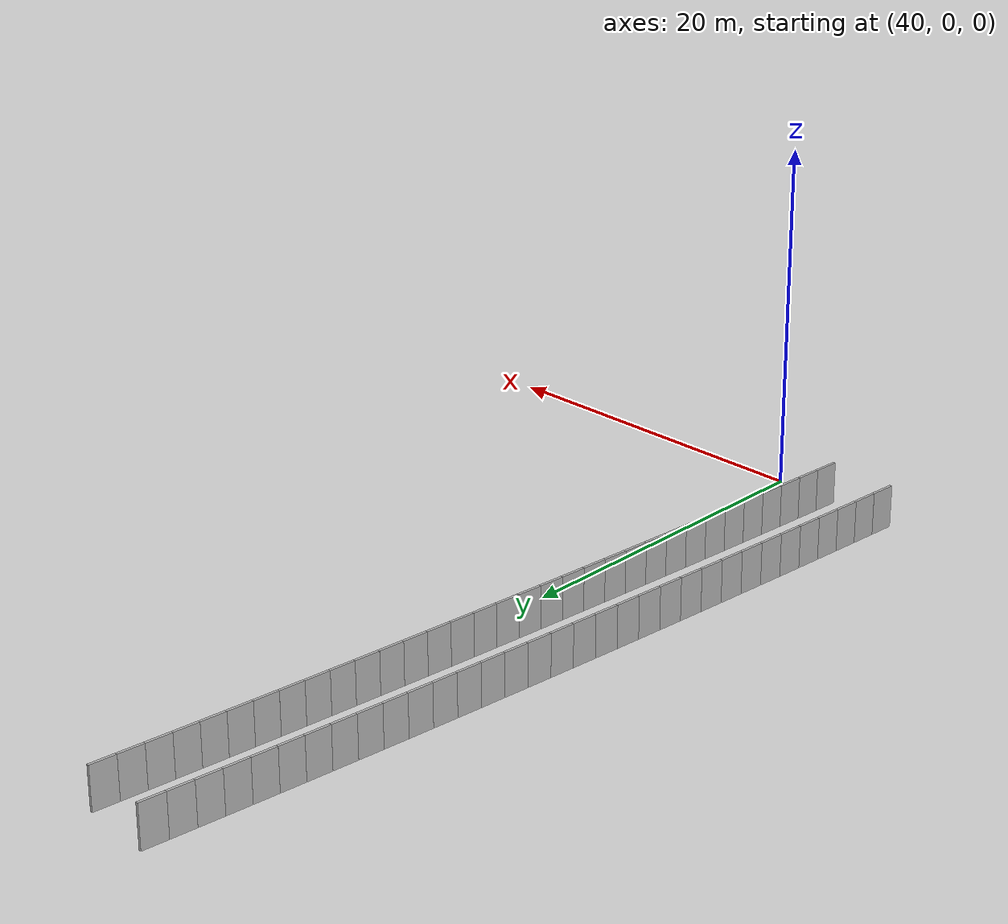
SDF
<?xml version="1.0" ?>
<sdf version="1.6">
  <model name="sps_0227">
    <pose frame="">0 0 0 0 -0 0</pose>
    <static>1</static>
    <self_collide>0</self_collide>
    <allow_auto_disable>0</allow_auto_disable>
    <link name="Wall5137">
      <kinematic>0</kinematic>
      <gravity>1</gravity>
      <self_collide>0</self_collide>
      <collision name="collision">
        <geometry>
          <box>
            <size>1.49644 0.15 2.5</size>
          </box>
        </geometry>
        <pose frame="">0 0 0 0 -0 0</pose>
      </collision>
      <visual name="visual">
        <geometry>
          <box>
            <size>1.49644 0.15 2.5</size>
          </box>
        </geometry>
        <pose frame="">0 0 0 0 -0 0</pose>
        <cast_shadows>1</cast_shadows>
        <transparency>0.0</transparency>
      </visual>
      <pose frame="">40.3633 48.5988 1.25 0 0 -1.68316</pose>
    </link>
    <link name="Wall5138">
      <kinematic>0</kinematic>
      <gravity>1</gravity>
      <self_collide>0</self_collide>
      <collision name="collision">
        <geometry>
          <box>
            <size>1.4966 0.15 2.5</size>
          </box>
        </geometry>
        <pose frame="">0 0 0 0 -0 0</pose>
      </collision>
      <visual name="visual">
        <geometry>
          <box>
            <size>1.4966 0.15 2.5</size>
          </box>
        </geometry>
        <pose frame="">0 0 0 0 -0 0</pose>
        <cast_shadows>1</cast_shadows>
        <transparency>0.0</transparency>
      </visual>
      <pose frame="">40.1967 47.1116 1.25 0 0 -1.68154</pose>
    </link>
    <link name="Wall5139">
      <kinematic>0</kinematic>
      <gravity>1</gravity>
      <self_collide>0</self_collide>
      <collision name="collision">
        <geometry>
          <box>
            <size>1.49672 0.15 2.5</size>
          </box>
        </geometry>
        <pose frame="">0 0 0 0 -0 0</pose>
      </collision>
      <visual name="visual">
        <geometry>
          <box>
            <size>1.49672 0.15 2.5</size>
          </box>
        </geometry>
        <pose frame="">0 0 0 0 -0 0</pose>
        <cast_shadows>1</cast_shadows>
        <transparency>0.0</transparency>
      </visual>
      <pose frame="">40.0324 45.624 1.25 0 0 -1.68006</pose>
    </link>
    <link name="Wall5140">
      <kinematic>0</kinematic>
      <gravity>1</gravity>
      <self_collide>0</self_collide>
      <collision name="collision">
        <geometry>
          <box>
            <size>1.49643 0.15 2.5</size>
          </box>
        </geometry>
        <pose frame="">0 0 0 0 -0 0</pose>
      </collision>
      <visual name="visual">
        <geometry>
          <box>
            <size>1.49643 0.15 2.5</size>
          </box>
        </geometry>
        <pose frame="">0 0 0 0 -0 0</pose>
        <cast_shadows>1</cast_shadows>
        <transparency>0.0</transparency>
      </visual>
      <pose frame="">39.8705 44.1362 1.25 0 0 -1.67831</pose>
    </link>
    <link name="Wall5141">
      <kinematic>0</kinematic>
      <gravity>1</gravity>
      <self_collide>0</self_collide>
      <collision name="collision">
        <geometry>
          <box>
            <size>1.49636 0.15 2.5</size>
          </box>
        </geometry>
        <pose frame="">0 0 0 0 -0 0</pose>
      </collision>
      <visual name="visual">
        <geometry>
          <box>
            <size>1.49636 0.15 2.5</size>
          </box>
        </geometry>
        <pose frame="">0 0 0 0 -0 0</pose>
        <cast_shadows>1</cast_shadows>
        <transparency>0.0</transparency>
      </visual>
      <pose frame="">39.7111 42.6483 1.25 0 0 -1.67672</pose>
    </link>
    <link name="Wall5142">
      <kinematic>0</kinematic>
      <gravity>1</gravity>
      <self_collide>0</self_collide>
      <collision name="collision">
        <geometry>
          <box>
            <size>1.49656 0.15 2.5</size>
          </box>
        </geometry>
        <pose frame="">0 0 0 0 -0 0</pose>
      </collision>
      <visual name="visual">
        <geometry>
          <box>
            <size>1.49656 0.15 2.5</size>
          </box>
        </geometry>
        <pose frame="">0 0 0 0 -0 0</pose>
        <cast_shadows>1</cast_shadows>
        <transparency>0.0</transparency>
      </visual>
      <pose frame="">39.554 41.1601 1.25 0 0 -1.67523</pose>
    </link>
    <link name="Wall5143">
      <kinematic>0</kinematic>
      <gravity>1</gravity>
      <self_collide>0</self_collide>
      <collision name="collision">
        <geometry>
          <box>
            <size>1.49647 0.15 2.5</size>
          </box>
        </geometry>
        <pose frame="">0 0 0 0 -0 0</pose>
      </collision>
      <visual name="visual">
        <geometry>
          <box>
            <size>1.49647 0.15 2.5</size>
          </box>
        </geometry>
        <pose frame="">0 0 0 0 -0 0</pose>
        <cast_shadows>1</cast_shadows>
        <transparency>0.0</transparency>
      </visual>
      <pose frame="">39.3993 39.6716 1.25 0 0 -1.67347</pose>
    </link>
    <link name="Wall5144">
      <kinematic>0</kinematic>
      <gravity>1</gravity>
      <self_collide>0</self_collide>
      <collision name="collision">
        <geometry>
          <box>
            <size>1.49651 0.15 2.5</size>
          </box>
        </geometry>
        <pose frame="">0 0 0 0 -0 0</pose>
      </collision>
      <visual name="visual">
        <geometry>
          <box>
            <size>1.49651 0.15 2.5</size>
          </box>
        </geometry>
        <pose frame="">0 0 0 0 -0 0</pose>
        <cast_shadows>1</cast_shadows>
        <transparency>0.0</transparency>
      </visual>
      <pose frame="">39.2469 38.1829 1.25 0 0 -1.67216</pose>
    </link>
    <link name="Wall5145">
      <kinematic>0</kinematic>
      <gravity>1</gravity>
      <self_collide>0</self_collide>
      <collision name="collision">
        <geometry>
          <box>
            <size>1.49661 0.15 2.5</size>
          </box>
        </geometry>
        <pose frame="">0 0 0 0 -0 0</pose>
      </collision>
      <visual name="visual">
        <geometry>
          <box>
            <size>1.49661 0.15 2.5</size>
          </box>
        </geometry>
        <pose frame="">0 0 0 0 -0 0</pose>
        <cast_shadows>1</cast_shadows>
        <transparency>0.0</transparency>
      </visual>
      <pose frame="">39.0969 36.6939 1.25 0 0 -1.67035</pose>
    </link>
    <link name="Wall5146">
      <kinematic>0</kinematic>
      <gravity>1</gravity>
      <self_collide>0</self_collide>
      <collision name="collision">
        <geometry>
          <box>
            <size>1.4964 0.15 2.5</size>
          </box>
        </geometry>
        <pose frame="">0 0 0 0 -0 0</pose>
      </collision>
      <visual name="visual">
        <geometry>
          <box>
            <size>1.4964 0.15 2.5</size>
          </box>
        </geometry>
        <pose frame="">0 0 0 0 -0 0</pose>
        <cast_shadows>1</cast_shadows>
        <transparency>0.0</transparency>
      </visual>
      <pose frame="">38.9492 35.2047 1.25 0 0 -1.66893</pose>
    </link>
    <link name="Wall5147">
      <kinematic>0</kinematic>
      <gravity>1</gravity>
      <self_collide>0</self_collide>
      <collision name="collision">
        <geometry>
          <box>
            <size>1.49657 0.15 2.5</size>
          </box>
        </geometry>
        <pose frame="">0 0 0 0 -0 0</pose>
      </collision>
      <visual name="visual">
        <geometry>
          <box>
            <size>1.49657 0.15 2.5</size>
          </box>
        </geometry>
        <pose frame="">0 0 0 0 -0 0</pose>
        <cast_shadows>1</cast_shadows>
        <transparency>0.0</transparency>
      </visual>
      <pose frame="">38.8039 33.7153 1.25 0 0 -1.66719</pose>
    </link>
    <link name="Wall5148">
      <kinematic>0</kinematic>
      <gravity>1</gravity>
      <self_collide>0</self_collide>
      <collision name="collision">
        <geometry>
          <box>
            <size>1.49656 0.15 2.5</size>
          </box>
        </geometry>
        <pose frame="">0 0 0 0 -0 0</pose>
      </collision>
      <visual name="visual">
        <geometry>
          <box>
            <size>1.49656 0.15 2.5</size>
          </box>
        </geometry>
        <pose frame="">0 0 0 0 -0 0</pose>
        <cast_shadows>1</cast_shadows>
        <transparency>0.0</transparency>
      </visual>
      <pose frame="">38.6608 32.2256 1.25 0 0 -1.6658</pose>
    </link>
    <link name="Wall5149">
      <kinematic>0</kinematic>
      <gravity>1</gravity>
      <self_collide>0</self_collide>
      <collision name="collision">
        <geometry>
          <box>
            <size>1.4965 0.15 2.5</size>
          </box>
        </geometry>
        <pose frame="">0 0 0 0 -0 0</pose>
      </collision>
      <visual name="visual">
        <geometry>
          <box>
            <size>1.4965 0.15 2.5</size>
          </box>
        </geometry>
        <pose frame="">0 0 0 0 -0 0</pose>
        <cast_shadows>1</cast_shadows>
        <transparency>0.0</transparency>
      </visual>
      <pose frame="">38.5202 30.7357 1.25 0 0 -1.66409</pose>
    </link>
    <link name="Wall5150">
      <kinematic>0</kinematic>
      <gravity>1</gravity>
      <self_collide>0</self_collide>
      <collision name="collision">
        <geometry>
          <box>
            <size>1.49648 0.15 2.5</size>
          </box>
        </geometry>
        <pose frame="">0 0 0 0 -0 0</pose>
      </collision>
      <visual name="visual">
        <geometry>
          <box>
            <size>1.49648 0.15 2.5</size>
          </box>
        </geometry>
        <pose frame="">0 0 0 0 -0 0</pose>
        <cast_shadows>1</cast_shadows>
        <transparency>0.0</transparency>
      </visual>
      <pose frame="">38.3819 29.2456 1.25 0 0 -1.66261</pose>
    </link>
    <link name="Wall5151">
      <kinematic>0</kinematic>
      <gravity>1</gravity>
      <self_collide>0</self_collide>
      <collision name="collision">
        <geometry>
          <box>
            <size>1.4965 0.15 2.5</size>
          </box>
        </geometry>
        <pose frame="">0 0 0 0 -0 0</pose>
      </collision>
      <visual name="visual">
        <geometry>
          <box>
            <size>1.4965 0.15 2.5</size>
          </box>
        </geometry>
        <pose frame="">0 0 0 0 -0 0</pose>
        <cast_shadows>1</cast_shadows>
        <transparency>0.0</transparency>
      </visual>
      <pose frame="">38.2458 27.7553 1.25 0 0 -1.66101</pose>
    </link>
    <link name="Wall5152">
      <kinematic>0</kinematic>
      <gravity>1</gravity>
      <self_collide>0</self_collide>
      <collision name="collision">
        <geometry>
          <box>
            <size>1.49663 0.15 2.5</size>
          </box>
        </geometry>
        <pose frame="">0 0 0 0 -0 0</pose>
      </collision>
      <visual name="visual">
        <geometry>
          <box>
            <size>1.49663 0.15 2.5</size>
          </box>
        </geometry>
        <pose frame="">0 0 0 0 -0 0</pose>
        <cast_shadows>1</cast_shadows>
        <transparency>0.0</transparency>
      </visual>
      <pose frame="">38.1123 26.2647 1.25 0 0 -1.65924</pose>
    </link>
    <link name="Wall5153">
      <kinematic>0</kinematic>
      <gravity>1</gravity>
      <self_collide>0</self_collide>
      <collision name="collision">
        <geometry>
          <box>
            <size>1.49644 0.15 2.5</size>
          </box>
        </geometry>
        <pose frame="">0 0 0 0 -0 0</pose>
      </collision>
      <visual name="visual">
        <geometry>
          <box>
            <size>1.49644 0.15 2.5</size>
          </box>
        </geometry>
        <pose frame="">0 0 0 0 -0 0</pose>
        <cast_shadows>1</cast_shadows>
        <transparency>0.0</transparency>
      </visual>
      <pose frame="">37.9813 24.7739 1.25 0 0 -1.65774</pose>
    </link>
    <link name="Wall5154">
      <kinematic>0</kinematic>
      <gravity>1</gravity>
      <self_collide>0</self_collide>
      <collision name="collision">
        <geometry>
          <box>
            <size>1.4965 0.15 2.5</size>
          </box>
        </geometry>
        <pose frame="">0 0 0 0 -0 0</pose>
      </collision>
      <visual name="visual">
        <geometry>
          <box>
            <size>1.4965 0.15 2.5</size>
          </box>
        </geometry>
        <pose frame="">0 0 0 0 -0 0</pose>
        <cast_shadows>1</cast_shadows>
        <transparency>0.0</transparency>
      </visual>
      <pose frame="">37.8524 23.283 1.25 0 0 -1.65631</pose>
    </link>
    <link name="Wall5155">
      <kinematic>0</kinematic>
      <gravity>1</gravity>
      <self_collide>0</self_collide>
      <collision name="collision">
        <geometry>
          <box>
            <size>1.49664 0.15 2.5</size>
          </box>
        </geometry>
        <pose frame="">0 0 0 0 -0 0</pose>
      </collision>
      <visual name="visual">
        <geometry>
          <box>
            <size>1.49664 0.15 2.5</size>
          </box>
        </geometry>
        <pose frame="">0 0 0 0 -0 0</pose>
        <cast_shadows>1</cast_shadows>
        <transparency>0.0</transparency>
      </visual>
      <pose frame="">37.7259 21.7918 1.25 0 0 -1.65458</pose>
    </link>
    <link name="Wall5156">
      <kinematic>0</kinematic>
      <gravity>1</gravity>
      <self_collide>0</self_collide>
      <collision name="collision">
        <geometry>
          <box>
            <size>1.49644 0.15 2.5</size>
          </box>
        </geometry>
        <pose frame="">0 0 0 0 -0 0</pose>
      </collision>
      <visual name="visual">
        <geometry>
          <box>
            <size>1.49644 0.15 2.5</size>
          </box>
        </geometry>
        <pose frame="">0 0 0 0 -0 0</pose>
        <cast_shadows>1</cast_shadows>
        <transparency>0.0</transparency>
      </visual>
      <pose frame="">37.6018 20.3004 1.25 0 0 -1.65295</pose>
    </link>
    <link name="Wall5157">
      <kinematic>0</kinematic>
      <gravity>1</gravity>
      <self_collide>0</self_collide>
      <collision name="collision">
        <geometry>
          <box>
            <size>1.49667 0.15 2.5</size>
          </box>
        </geometry>
        <pose frame="">0 0 0 0 -0 0</pose>
      </collision>
      <visual name="visual">
        <geometry>
          <box>
            <size>1.49667 0.15 2.5</size>
          </box>
        </geometry>
        <pose frame="">0 0 0 0 -0 0</pose>
        <cast_shadows>1</cast_shadows>
        <transparency>0.0</transparency>
      </visual>
      <pose frame="">37.4802 18.8088 1.25 0 0 -1.6513</pose>
    </link>
    <link name="Wall5158">
      <kinematic>0</kinematic>
      <gravity>1</gravity>
      <self_collide>0</self_collide>
      <collision name="collision">
        <geometry>
          <box>
            <size>1.49644 0.15 2.5</size>
          </box>
        </geometry>
        <pose frame="">0 0 0 0 -0 0</pose>
      </collision>
      <visual name="visual">
        <geometry>
          <box>
            <size>1.49644 0.15 2.5</size>
          </box>
        </geometry>
        <pose frame="">0 0 0 0 -0 0</pose>
        <cast_shadows>1</cast_shadows>
        <transparency>0.0</transparency>
      </visual>
      <pose frame="">37.361 17.317 1.25 0 0 -1.64988</pose>
    </link>
    <link name="Wall5159">
      <kinematic>0</kinematic>
      <gravity>1</gravity>
      <self_collide>0</self_collide>
      <collision name="collision">
        <geometry>
          <box>
            <size>1.4965 0.15 2.5</size>
          </box>
        </geometry>
        <pose frame="">0 0 0 0 -0 0</pose>
      </collision>
      <visual name="visual">
        <geometry>
          <box>
            <size>1.4965 0.15 2.5</size>
          </box>
        </geometry>
        <pose frame="">0 0 0 0 -0 0</pose>
        <cast_shadows>1</cast_shadows>
        <transparency>0.0</transparency>
      </visual>
      <pose frame="">37.2439 15.8251 1.25 0 0 -1.64837</pose>
    </link>
    <link name="Wall5160">
      <kinematic>0</kinematic>
      <gravity>1</gravity>
      <self_collide>0</self_collide>
      <collision name="collision">
        <geometry>
          <box>
            <size>1.49655 0.15 2.5</size>
          </box>
        </geometry>
        <pose frame="">0 0 0 0 -0 0</pose>
      </collision>
      <visual name="visual">
        <geometry>
          <box>
            <size>1.49655 0.15 2.5</size>
          </box>
        </geometry>
        <pose frame="">0 0 0 0 -0 0</pose>
        <cast_shadows>1</cast_shadows>
        <transparency>0.0</transparency>
      </visual>
      <pose frame="">37.1292 14.333 1.25 0 0 -1.64665</pose>
    </link>
    <link name="Wall5161">
      <kinematic>0</kinematic>
      <gravity>1</gravity>
      <self_collide>0</self_collide>
      <collision name="collision">
        <geometry>
          <box>
            <size>1.49651 0.15 2.5</size>
          </box>
        </geometry>
        <pose frame="">0 0 0 0 -0 0</pose>
      </collision>
      <visual name="visual">
        <geometry>
          <box>
            <size>1.49651 0.15 2.5</size>
          </box>
        </geometry>
        <pose frame="">0 0 0 0 -0 0</pose>
        <cast_shadows>1</cast_shadows>
        <transparency>0.0</transparency>
      </visual>
      <pose frame="">37.0169 12.8407 1.25 0 0 -1.64518</pose>
    </link>
    <link name="Wall5162">
      <kinematic>0</kinematic>
      <gravity>1</gravity>
      <self_collide>0</self_collide>
      <collision name="collision">
        <geometry>
          <box>
            <size>1.49656 0.15 2.5</size>
          </box>
        </geometry>
        <pose frame="">0 0 0 0 -0 0</pose>
      </collision>
      <visual name="visual">
        <geometry>
          <box>
            <size>1.49656 0.15 2.5</size>
          </box>
        </geometry>
        <pose frame="">0 0 0 0 -0 0</pose>
        <cast_shadows>1</cast_shadows>
        <transparency>0.0</transparency>
      </visual>
      <pose frame="">36.907 11.3482 1.25 0 0 -1.64341</pose>
    </link>
    <link name="Wall5163">
      <kinematic>0</kinematic>
      <gravity>1</gravity>
      <self_collide>0</self_collide>
      <collision name="collision">
        <geometry>
          <box>
            <size>1.49641 0.15 2.5</size>
          </box>
        </geometry>
        <pose frame="">0 0 0 0 -0 0</pose>
      </collision>
      <visual name="visual">
        <geometry>
          <box>
            <size>1.49641 0.15 2.5</size>
          </box>
        </geometry>
        <pose frame="">0 0 0 0 -0 0</pose>
        <cast_shadows>1</cast_shadows>
        <transparency>0.0</transparency>
      </visual>
      <pose frame="">36.7995 9.85557 1.25 0 0 -1.64199</pose>
    </link>
    <link name="Wall5164">
      <kinematic>0</kinematic>
      <gravity>1</gravity>
      <self_collide>0</self_collide>
      <collision name="collision">
        <geometry>
          <box>
            <size>1.4966 0.15 2.5</size>
          </box>
        </geometry>
        <pose frame="">0 0 0 0 -0 0</pose>
      </collision>
      <visual name="visual">
        <geometry>
          <box>
            <size>1.4966 0.15 2.5</size>
          </box>
        </geometry>
        <pose frame="">0 0 0 0 -0 0</pose>
        <cast_shadows>1</cast_shadows>
        <transparency>0.0</transparency>
      </visual>
      <pose frame="">36.6942 8.36278 1.25 0 0 -1.64035</pose>
    </link>
    <link name="Wall5165">
      <kinematic>0</kinematic>
      <gravity>1</gravity>
      <self_collide>0</self_collide>
      <collision name="collision">
        <geometry>
          <box>
            <size>1.49643 0.15 2.5</size>
          </box>
        </geometry>
        <pose frame="">0 0 0 0 -0 0</pose>
      </collision>
      <visual name="visual">
        <geometry>
          <box>
            <size>1.49643 0.15 2.5</size>
          </box>
        </geometry>
        <pose frame="">0 0 0 0 -0 0</pose>
        <cast_shadows>1</cast_shadows>
        <transparency>0.0</transparency>
      </visual>
      <pose frame="">36.5915 6.8698 1.25 0 0 -1.63872</pose>
    </link>
    <link name="Wall5166">
      <kinematic>0</kinematic>
      <gravity>1</gravity>
      <self_collide>0</self_collide>
      <collision name="collision">
        <geometry>
          <box>
            <size>1.49652 0.15 2.5</size>
          </box>
        </geometry>
        <pose frame="">0 0 0 0 -0 0</pose>
      </collision>
      <visual name="visual">
        <geometry>
          <box>
            <size>1.49652 0.15 2.5</size>
          </box>
        </geometry>
        <pose frame="">0 0 0 0 -0 0</pose>
        <cast_shadows>1</cast_shadows>
        <transparency>0.0</transparency>
      </visual>
      <pose frame="">36.4911 5.37669 1.25 0 0 -1.63716</pose>
    </link>
    <link name="Wall5167">
      <kinematic>0</kinematic>
      <gravity>1</gravity>
      <self_collide>0</self_collide>
      <collision name="collision">
        <geometry>
          <box>
            <size>1.49655 0.15 2.5</size>
          </box>
        </geometry>
        <pose frame="">0 0 0 0 -0 0</pose>
      </collision>
      <visual name="visual">
        <geometry>
          <box>
            <size>1.49655 0.15 2.5</size>
          </box>
        </geometry>
        <pose frame="">0 0 0 0 -0 0</pose>
        <cast_shadows>1</cast_shadows>
        <transparency>0.0</transparency>
      </visual>
      <pose frame="">36.3929 3.88338 1.25 0 0 -1.63565</pose>
    </link>
    <link name="Wall5168">
      <kinematic>0</kinematic>
      <gravity>1</gravity>
      <self_collide>0</self_collide>
      <collision name="collision">
        <geometry>
          <box>
            <size>1.49658 0.15 2.5</size>
          </box>
        </geometry>
        <pose frame="">0 0 0 0 -0 0</pose>
      </collision>
      <visual name="visual">
        <geometry>
          <box>
            <size>1.49658 0.15 2.5</size>
          </box>
        </geometry>
        <pose frame="">0 0 0 0 -0 0</pose>
        <cast_shadows>1</cast_shadows>
        <transparency>0.0</transparency>
      </visual>
      <pose frame="">36.2971 2.38988 1.25 0 0 -1.63405</pose>
    </link>
    <link name="Wall5169">
      <kinematic>0</kinematic>
      <gravity>1</gravity>
      <self_collide>0</self_collide>
      <collision name="collision">
        <geometry>
          <box>
            <size>1.49642 0.15 2.5</size>
          </box>
        </geometry>
        <pose frame="">0 0 0 0 -0 0</pose>
      </collision>
      <visual name="visual">
        <geometry>
          <box>
            <size>1.49642 0.15 2.5</size>
          </box>
        </geometry>
        <pose frame="">0 0 0 0 -0 0</pose>
        <cast_shadows>1</cast_shadows>
        <transparency>0.0</transparency>
      </visual>
      <pose frame="">36.2038 0.896285 1.25 0 0 -1.6323</pose>
    </link>
    <link name="Wall6933">
      <kinematic>0</kinematic>
      <gravity>1</gravity>
      <self_collide>0</self_collide>
      <collision name="collision">
        <geometry>
          <box>
            <size>1.50307 0.15 2.5</size>
          </box>
        </geometry>
        <pose frame="">0 0 0 0 -0 0</pose>
      </collision>
      <visual name="visual">
        <geometry>
          <box>
            <size>1.50307 0.15 2.5</size>
          </box>
        </geometry>
        <pose frame="">0 0 0 0 -0 0</pose>
        <cast_shadows>1</cast_shadows>
        <transparency>0.0</transparency>
      </visual>
      <pose frame="">36.2501 49.0627 1.25 0 0 -1.68319</pose>
    </link>
    <link name="Wall6934">
      <kinematic>0</kinematic>
      <gravity>1</gravity>
      <self_collide>0</self_collide>
      <collision name="collision">
        <geometry>
          <box>
            <size>1.50315 0.15 2.5</size>
          </box>
        </geometry>
        <pose frame="">0 0 0 0 -0 0</pose>
      </collision>
      <visual name="visual">
        <geometry>
          <box>
            <size>1.50315 0.15 2.5</size>
          </box>
        </geometry>
        <pose frame="">0 0 0 0 -0 0</pose>
        <cast_shadows>1</cast_shadows>
        <transparency>0.0</transparency>
      </visual>
      <pose frame="">36.0828 47.5689 1.25 0 0 -1.68147</pose>
    </link>
    <link name="Wall6935">
      <kinematic>0</kinematic>
      <gravity>1</gravity>
      <self_collide>0</self_collide>
      <collision name="collision">
        <geometry>
          <box>
            <size>1.50299 0.15 2.5</size>
          </box>
        </geometry>
        <pose frame="">0 0 0 0 -0 0</pose>
      </collision>
      <visual name="visual">
        <geometry>
          <box>
            <size>1.50299 0.15 2.5</size>
          </box>
        </geometry>
        <pose frame="">0 0 0 0 -0 0</pose>
        <cast_shadows>1</cast_shadows>
        <transparency>0.0</transparency>
      </visual>
      <pose frame="">35.9178 46.0749 1.25 0 0 -1.68013</pose>
    </link>
    <link name="Wall6936">
      <kinematic>0</kinematic>
      <gravity>1</gravity>
      <self_collide>0</self_collide>
      <collision name="collision">
        <geometry>
          <box>
            <size>1.50305 0.15 2.5</size>
          </box>
        </geometry>
        <pose frame="">0 0 0 0 -0 0</pose>
      </collision>
      <visual name="visual">
        <geometry>
          <box>
            <size>1.50305 0.15 2.5</size>
          </box>
        </geometry>
        <pose frame="">0 0 0 0 -0 0</pose>
        <cast_shadows>1</cast_shadows>
        <transparency>0.0</transparency>
      </visual>
      <pose frame="">35.7552 44.5807 1.25 0 0 -1.67825</pose>
    </link>
    <link name="Wall6937">
      <kinematic>0</kinematic>
      <gravity>1</gravity>
      <self_collide>0</self_collide>
      <collision name="collision">
        <geometry>
          <box>
            <size>1.50324 0.15 2.5</size>
          </box>
        </geometry>
        <pose frame="">0 0 0 0 -0 0</pose>
      </collision>
      <visual name="visual">
        <geometry>
          <box>
            <size>1.50324 0.15 2.5</size>
          </box>
        </geometry>
        <pose frame="">0 0 0 0 -0 0</pose>
        <cast_shadows>1</cast_shadows>
        <transparency>0.0</transparency>
      </visual>
      <pose frame="">35.5951 43.0861 1.25 0 0 -1.67676</pose>
    </link>
    <link name="Wall6938">
      <kinematic>0</kinematic>
      <gravity>1</gravity>
      <self_collide>0</self_collide>
      <collision name="collision">
        <geometry>
          <box>
            <size>1.50299 0.15 2.5</size>
          </box>
        </geometry>
        <pose frame="">0 0 0 0 -0 0</pose>
      </collision>
      <visual name="visual">
        <geometry>
          <box>
            <size>1.50299 0.15 2.5</size>
          </box>
        </geometry>
        <pose frame="">0 0 0 0 -0 0</pose>
        <cast_shadows>1</cast_shadows>
        <transparency>0.0</transparency>
      </visual>
      <pose frame="">35.4373 41.5913 1.25 0 0 -1.67519</pose>
    </link>
    <link name="Wall6939">
      <kinematic>0</kinematic>
      <gravity>1</gravity>
      <self_collide>0</self_collide>
      <collision name="collision">
        <geometry>
          <box>
            <size>1.50312 0.15 2.5</size>
          </box>
        </geometry>
        <pose frame="">0 0 0 0 -0 0</pose>
      </collision>
      <visual name="visual">
        <geometry>
          <box>
            <size>1.50312 0.15 2.5</size>
          </box>
        </geometry>
        <pose frame="">0 0 0 0 -0 0</pose>
        <cast_shadows>1</cast_shadows>
        <transparency>0.0</transparency>
      </visual>
      <pose frame="">35.2819 40.0963 1.25 0 0 -1.67367</pose>
    </link>
    <link name="Wall6940">
      <kinematic>0</kinematic>
      <gravity>1</gravity>
      <self_collide>0</self_collide>
      <collision name="collision">
        <geometry>
          <box>
            <size>1.50295 0.15 2.5</size>
          </box>
        </geometry>
        <pose frame="">0 0 0 0 -0 0</pose>
      </collision>
      <visual name="visual">
        <geometry>
          <box>
            <size>1.50295 0.15 2.5</size>
          </box>
        </geometry>
        <pose frame="">0 0 0 0 -0 0</pose>
        <cast_shadows>1</cast_shadows>
        <transparency>0.0</transparency>
      </visual>
      <pose frame="">35.1287 38.6011 1.25 0 0 -1.67213</pose>
    </link>
    <link name="Wall6941">
      <kinematic>0</kinematic>
      <gravity>1</gravity>
      <self_collide>0</self_collide>
      <collision name="collision">
        <geometry>
          <box>
            <size>1.50307 0.15 2.5</size>
          </box>
        </geometry>
        <pose frame="">0 0 0 0 -0 0</pose>
      </collision>
      <visual name="visual">
        <geometry>
          <box>
            <size>1.50307 0.15 2.5</size>
          </box>
        </geometry>
        <pose frame="">0 0 0 0 -0 0</pose>
        <cast_shadows>1</cast_shadows>
        <transparency>0.0</transparency>
      </visual>
      <pose frame="">34.9778 37.1057 1.25 0 0 -1.67049</pose>
    </link>
    <link name="Wall6942">
      <kinematic>0</kinematic>
      <gravity>1</gravity>
      <self_collide>0</self_collide>
      <collision name="collision">
        <geometry>
          <box>
            <size>1.50317 0.15 2.5</size>
          </box>
        </geometry>
        <pose frame="">0 0 0 0 -0 0</pose>
      </collision>
      <visual name="visual">
        <geometry>
          <box>
            <size>1.50317 0.15 2.5</size>
          </box>
        </geometry>
        <pose frame="">0 0 0 0 -0 0</pose>
        <cast_shadows>1</cast_shadows>
        <transparency>0.0</transparency>
      </visual>
      <pose frame="">34.8296 35.6099 1.25 0 0 -1.66873</pose>
    </link>
    <link name="Wall6943">
      <kinematic>0</kinematic>
      <gravity>1</gravity>
      <self_collide>0</self_collide>
      <collision name="collision">
        <geometry>
          <box>
            <size>1.50297 0.15 2.5</size>
          </box>
        </geometry>
        <pose frame="">0 0 0 0 -0 0</pose>
      </collision>
      <visual name="visual">
        <geometry>
          <box>
            <size>1.50297 0.15 2.5</size>
          </box>
        </geometry>
        <pose frame="">0 0 0 0 -0 0</pose>
        <cast_shadows>1</cast_shadows>
        <transparency>0.0</transparency>
      </visual>
      <pose frame="">34.6836 34.1139 1.25 0 0 -1.66731</pose>
    </link>
    <link name="Wall6944">
      <kinematic>0</kinematic>
      <gravity>1</gravity>
      <self_collide>0</self_collide>
      <collision name="collision">
        <geometry>
          <box>
            <size>1.50316 0.15 2.5</size>
          </box>
        </geometry>
        <pose frame="">0 0 0 0 -0 0</pose>
      </collision>
      <visual name="visual">
        <geometry>
          <box>
            <size>1.50316 0.15 2.5</size>
          </box>
        </geometry>
        <pose frame="">0 0 0 0 -0 0</pose>
        <cast_shadows>1</cast_shadows>
        <transparency>0.0</transparency>
      </visual>
      <pose frame="">34.54 32.6177 1.25 0 0 -1.66567</pose>
    </link>
    <link name="Wall6945">
      <kinematic>0</kinematic>
      <gravity>1</gravity>
      <self_collide>0</self_collide>
      <collision name="collision">
        <geometry>
          <box>
            <size>1.50317 0.15 2.5</size>
          </box>
        </geometry>
        <pose frame="">0 0 0 0 -0 0</pose>
      </collision>
      <visual name="visual">
        <geometry>
          <box>
            <size>1.50317 0.15 2.5</size>
          </box>
        </geometry>
        <pose frame="">0 0 0 0 -0 0</pose>
        <cast_shadows>1</cast_shadows>
        <transparency>0.0</transparency>
      </visual>
      <pose frame="">34.3989 31.1212 1.25 0 0 -1.66404</pose>
    </link>
    <link name="Wall6946">
      <kinematic>0</kinematic>
      <gravity>1</gravity>
      <self_collide>0</self_collide>
      <collision name="collision">
        <geometry>
          <box>
            <size>1.5029 0.15 2.5</size>
          </box>
        </geometry>
        <pose frame="">0 0 0 0 -0 0</pose>
      </collision>
      <visual name="visual">
        <geometry>
          <box>
            <size>1.5029 0.15 2.5</size>
          </box>
        </geometry>
        <pose frame="">0 0 0 0 -0 0</pose>
        <cast_shadows>1</cast_shadows>
        <transparency>0.0</transparency>
      </visual>
      <pose frame="">34.2601 29.6246 1.25 0 0 -1.6625</pose>
    </link>
    <link name="Wall6947">
      <kinematic>0</kinematic>
      <gravity>1</gravity>
      <self_collide>0</self_collide>
      <collision name="collision">
        <geometry>
          <box>
            <size>1.50312 0.15 2.5</size>
          </box>
        </geometry>
        <pose frame="">0 0 0 0 -0 0</pose>
      </collision>
      <visual name="visual">
        <geometry>
          <box>
            <size>1.50312 0.15 2.5</size>
          </box>
        </geometry>
        <pose frame="">0 0 0 0 -0 0</pose>
        <cast_shadows>1</cast_shadows>
        <transparency>0.0</transparency>
      </visual>
      <pose frame="">34.1236 28.1278 1.25 0 0 -1.66098</pose>
    </link>
    <link name="Wall6948">
      <kinematic>0</kinematic>
      <gravity>1</gravity>
      <self_collide>0</self_collide>
      <collision name="collision">
        <geometry>
          <box>
            <size>1.50309 0.15 2.5</size>
          </box>
        </geometry>
        <pose frame="">0 0 0 0 -0 0</pose>
      </collision>
      <visual name="visual">
        <geometry>
          <box>
            <size>1.50309 0.15 2.5</size>
          </box>
        </geometry>
        <pose frame="">0 0 0 0 -0 0</pose>
        <cast_shadows>1</cast_shadows>
        <transparency>0.0</transparency>
      </visual>
      <pose frame="">33.9894 26.6307 1.25 0 0 -1.65939</pose>
    </link>
    <link name="Wall6949">
      <kinematic>0</kinematic>
      <gravity>1</gravity>
      <self_collide>0</self_collide>
      <collision name="collision">
        <geometry>
          <box>
            <size>1.50305 0.15 2.5</size>
          </box>
        </geometry>
        <pose frame="">0 0 0 0 -0 0</pose>
      </collision>
      <visual name="visual">
        <geometry>
          <box>
            <size>1.50305 0.15 2.5</size>
          </box>
        </geometry>
        <pose frame="">0 0 0 0 -0 0</pose>
        <cast_shadows>1</cast_shadows>
        <transparency>0.0</transparency>
      </visual>
      <pose frame="">33.8577 25.1334 1.25 0 0 -1.65768</pose>
    </link>
    <link name="Wall6950">
      <kinematic>0</kinematic>
      <gravity>1</gravity>
      <self_collide>0</self_collide>
      <collision name="collision">
        <geometry>
          <box>
            <size>1.50309 0.15 2.5</size>
          </box>
        </geometry>
        <pose frame="">0 0 0 0 -0 0</pose>
      </collision>
      <visual name="visual">
        <geometry>
          <box>
            <size>1.50309 0.15 2.5</size>
          </box>
        </geometry>
        <pose frame="">0 0 0 0 -0 0</pose>
        <cast_shadows>1</cast_shadows>
        <transparency>0.0</transparency>
      </visual>
      <pose frame="">33.7284 23.6359 1.25 0 0 -1.65617</pose>
    </link>
    <link name="Wall6951">
      <kinematic>0</kinematic>
      <gravity>1</gravity>
      <self_collide>0</self_collide>
      <collision name="collision">
        <geometry>
          <box>
            <size>1.50308 0.15 2.5</size>
          </box>
        </geometry>
        <pose frame="">0 0 0 0 -0 0</pose>
      </collision>
      <visual name="visual">
        <geometry>
          <box>
            <size>1.50308 0.15 2.5</size>
          </box>
        </geometry>
        <pose frame="">0 0 0 0 -0 0</pose>
        <cast_shadows>1</cast_shadows>
        <transparency>0.0</transparency>
      </visual>
      <pose frame="">33.6014 22.1382 1.25 0 0 -1.65459</pose>
    </link>
    <link name="Wall6952">
      <kinematic>0</kinematic>
      <gravity>1</gravity>
      <self_collide>0</self_collide>
      <collision name="collision">
        <geometry>
          <box>
            <size>1.50306 0.15 2.5</size>
          </box>
        </geometry>
        <pose frame="">0 0 0 0 -0 0</pose>
      </collision>
      <visual name="visual">
        <geometry>
          <box>
            <size>1.50306 0.15 2.5</size>
          </box>
        </geometry>
        <pose frame="">0 0 0 0 -0 0</pose>
        <cast_shadows>1</cast_shadows>
        <transparency>0.0</transparency>
      </visual>
      <pose frame="">33.4768 20.6403 1.25 0 0 -1.653</pose>
    </link>
    <link name="Wall6953">
      <kinematic>0</kinematic>
      <gravity>1</gravity>
      <self_collide>0</self_collide>
      <collision name="collision">
        <geometry>
          <box>
            <size>1.50313 0.15 2.5</size>
          </box>
        </geometry>
        <pose frame="">0 0 0 0 -0 0</pose>
      </collision>
      <visual name="visual">
        <geometry>
          <box>
            <size>1.50313 0.15 2.5</size>
          </box>
        </geometry>
        <pose frame="">0 0 0 0 -0 0</pose>
        <cast_shadows>1</cast_shadows>
        <transparency>0.0</transparency>
      </visual>
      <pose frame="">33.3545 19.1422 1.25 0 0 -1.65153</pose>
    </link>
    <link name="Wall6954">
      <kinematic>0</kinematic>
      <gravity>1</gravity>
      <self_collide>0</self_collide>
      <collision name="collision">
        <geometry>
          <box>
            <size>1.5031 0.15 2.5</size>
          </box>
        </geometry>
        <pose frame="">0 0 0 0 -0 0</pose>
      </collision>
      <visual name="visual">
        <geometry>
          <box>
            <size>1.5031 0.15 2.5</size>
          </box>
        </geometry>
        <pose frame="">0 0 0 0 -0 0</pose>
        <cast_shadows>1</cast_shadows>
        <transparency>0.0</transparency>
      </visual>
      <pose frame="">33.2345 17.6439 1.25 0 0 -1.64978</pose>
    </link>
    <link name="Wall6955">
      <kinematic>0</kinematic>
      <gravity>1</gravity>
      <self_collide>0</self_collide>
      <collision name="collision">
        <geometry>
          <box>
            <size>1.50311 0.15 2.5</size>
          </box>
        </geometry>
        <pose frame="">0 0 0 0 -0 0</pose>
      </collision>
      <visual name="visual">
        <geometry>
          <box>
            <size>1.50311 0.15 2.5</size>
          </box>
        </geometry>
        <pose frame="">0 0 0 0 -0 0</pose>
        <cast_shadows>1</cast_shadows>
        <transparency>0.0</transparency>
      </visual>
      <pose frame="">33.1171 16.1454 1.25 0 0 -1.64831</pose>
    </link>
    <link name="Wall6956">
      <kinematic>0</kinematic>
      <gravity>1</gravity>
      <self_collide>0</self_collide>
      <collision name="collision">
        <geometry>
          <box>
            <size>1.50293 0.15 2.5</size>
          </box>
        </geometry>
        <pose frame="">0 0 0 0 -0 0</pose>
      </collision>
      <visual name="visual">
        <geometry>
          <box>
            <size>1.50293 0.15 2.5</size>
          </box>
        </geometry>
        <pose frame="">0 0 0 0 -0 0</pose>
        <cast_shadows>1</cast_shadows>
        <transparency>0.0</transparency>
      </visual>
      <pose frame="">33.0019 14.6468 1.25 0 0 -1.64673</pose>
    </link>
    <link name="Wall6957">
      <kinematic>0</kinematic>
      <gravity>1</gravity>
      <self_collide>0</self_collide>
      <collision name="collision">
        <geometry>
          <box>
            <size>1.50311 0.15 2.5</size>
          </box>
        </geometry>
        <pose frame="">0 0 0 0 -0 0</pose>
      </collision>
      <visual name="visual">
        <geometry>
          <box>
            <size>1.50311 0.15 2.5</size>
          </box>
        </geometry>
        <pose frame="">0 0 0 0 -0 0</pose>
        <cast_shadows>1</cast_shadows>
        <transparency>0.0</transparency>
      </visual>
      <pose frame="">32.8891 13.148 1.25 0 0 -1.64509</pose>
    </link>
    <link name="Wall6958">
      <kinematic>0</kinematic>
      <gravity>1</gravity>
      <self_collide>0</self_collide>
      <collision name="collision">
        <geometry>
          <box>
            <size>1.50318 0.15 2.5</size>
          </box>
        </geometry>
        <pose frame="">0 0 0 0 -0 0</pose>
      </collision>
      <visual name="visual">
        <geometry>
          <box>
            <size>1.50318 0.15 2.5</size>
          </box>
        </geometry>
        <pose frame="">0 0 0 0 -0 0</pose>
        <cast_shadows>1</cast_shadows>
        <transparency>0.0</transparency>
      </visual>
      <pose frame="">32.7787 11.6489 1.25 0 0 -1.6435</pose>
    </link>
    <link name="Wall6959">
      <kinematic>0</kinematic>
      <gravity>1</gravity>
      <self_collide>0</self_collide>
      <collision name="collision">
        <geometry>
          <box>
            <size>1.50301 0.15 2.5</size>
          </box>
        </geometry>
        <pose frame="">0 0 0 0 -0 0</pose>
      </collision>
      <visual name="visual">
        <geometry>
          <box>
            <size>1.50301 0.15 2.5</size>
          </box>
        </geometry>
        <pose frame="">0 0 0 0 -0 0</pose>
        <cast_shadows>1</cast_shadows>
        <transparency>0.0</transparency>
      </visual>
      <pose frame="">32.6707 10.1497 1.25 0 0 -1.64192</pose>
    </link>
    <link name="Wall6960">
      <kinematic>0</kinematic>
      <gravity>1</gravity>
      <self_collide>0</self_collide>
      <collision name="collision">
        <geometry>
          <box>
            <size>1.50327 0.15 2.5</size>
          </box>
        </geometry>
        <pose frame="">0 0 0 0 -0 0</pose>
      </collision>
      <visual name="visual">
        <geometry>
          <box>
            <size>1.50327 0.15 2.5</size>
          </box>
        </geometry>
        <pose frame="">0 0 0 0 -0 0</pose>
        <cast_shadows>1</cast_shadows>
        <transparency>0.0</transparency>
      </visual>
      <pose frame="">32.5651 8.65028 1.25 0 0 -1.64032</pose>
    </link>
    <link name="Wall6961">
      <kinematic>0</kinematic>
      <gravity>1</gravity>
      <self_collide>0</self_collide>
      <collision name="collision">
        <geometry>
          <box>
            <size>1.50287 0.15 2.5</size>
          </box>
        </geometry>
        <pose frame="">0 0 0 0 -0 0</pose>
      </collision>
      <visual name="visual">
        <geometry>
          <box>
            <size>1.50287 0.15 2.5</size>
          </box>
        </geometry>
        <pose frame="">0 0 0 0 -0 0</pose>
        <cast_shadows>1</cast_shadows>
        <transparency>0.0</transparency>
      </visual>
      <pose frame="">32.4618 7.15077 1.25 0 0 -1.63883</pose>
    </link>
    <link name="Wall6962">
      <kinematic>0</kinematic>
      <gravity>1</gravity>
      <self_collide>0</self_collide>
      <collision name="collision">
        <geometry>
          <box>
            <size>1.50306 0.15 2.5</size>
          </box>
        </geometry>
        <pose frame="">0 0 0 0 -0 0</pose>
      </collision>
      <visual name="visual">
        <geometry>
          <box>
            <size>1.50306 0.15 2.5</size>
          </box>
        </geometry>
        <pose frame="">0 0 0 0 -0 0</pose>
        <cast_shadows>1</cast_shadows>
        <transparency>0.0</transparency>
      </visual>
      <pose frame="">32.3609 5.6512 1.25 0 0 -1.63712</pose>
    </link>
    <link name="Wall6963">
      <kinematic>0</kinematic>
      <gravity>1</gravity>
      <self_collide>0</self_collide>
      <collision name="collision">
        <geometry>
          <box>
            <size>1.50298 0.15 2.5</size>
          </box>
        </geometry>
        <pose frame="">0 0 0 0 -0 0</pose>
      </collision>
      <visual name="visual">
        <geometry>
          <box>
            <size>1.50298 0.15 2.5</size>
          </box>
        </geometry>
        <pose frame="">0 0 0 0 -0 0</pose>
        <cast_shadows>1</cast_shadows>
        <transparency>0.0</transparency>
      </visual>
      <pose frame="">32.2624 4.15141 1.25 0 0 -1.63565</pose>
    </link>
    <link name="Wall6964">
      <kinematic>0</kinematic>
      <gravity>1</gravity>
      <self_collide>0</self_collide>
      <collision name="collision">
        <geometry>
          <box>
            <size>1.503 0.15 2.5</size>
          </box>
        </geometry>
        <pose frame="">0 0 0 0 -0 0</pose>
      </collision>
      <visual name="visual">
        <geometry>
          <box>
            <size>1.503 0.15 2.5</size>
          </box>
        </geometry>
        <pose frame="">0 0 0 0 -0 0</pose>
        <cast_shadows>1</cast_shadows>
        <transparency>0.0</transparency>
      </visual>
      <pose frame="">32.1662 2.6515 1.25 0 0 -1.63403</pose>
    </link>
    <link name="Wall6965">
      <kinematic>0</kinematic>
      <gravity>1</gravity>
      <self_collide>0</self_collide>
      <collision name="collision">
        <geometry>
          <box>
            <size>1.50328 0.15 2.5</size>
          </box>
        </geometry>
        <pose frame="">0 0 0 0 -0 0</pose>
      </collision>
      <visual name="visual">
        <geometry>
          <box>
            <size>1.50328 0.15 2.5</size>
          </box>
        </geometry>
        <pose frame="">0 0 0 0 -0 0</pose>
        <cast_shadows>1</cast_shadows>
        <transparency>0.0</transparency>
      </visual>
      <pose frame="">32.0724 1.15129 1.25 0 0 -1.63243</pose>
    </link>
  </model>
</sdf>
